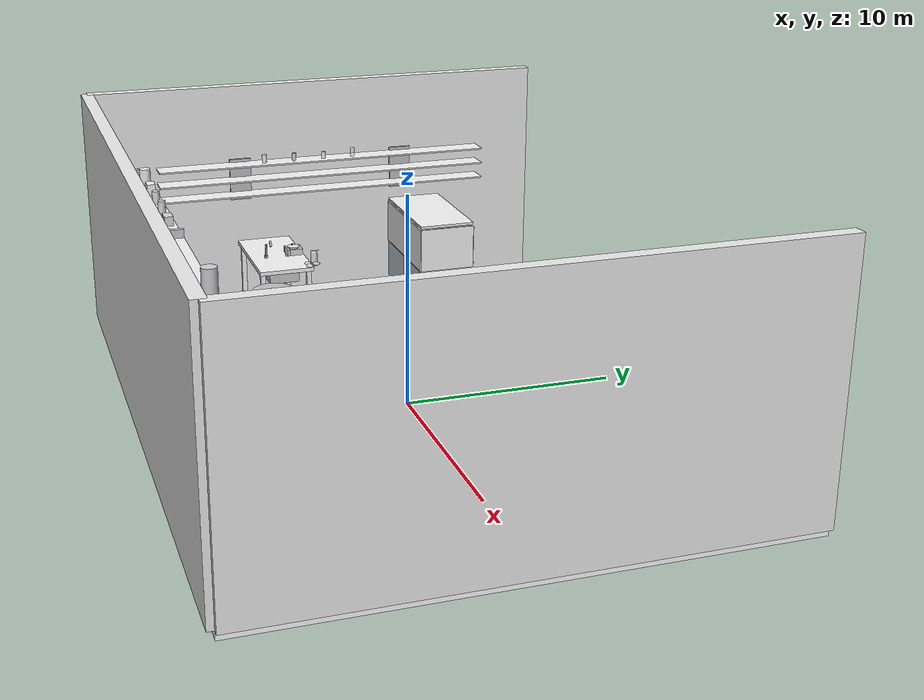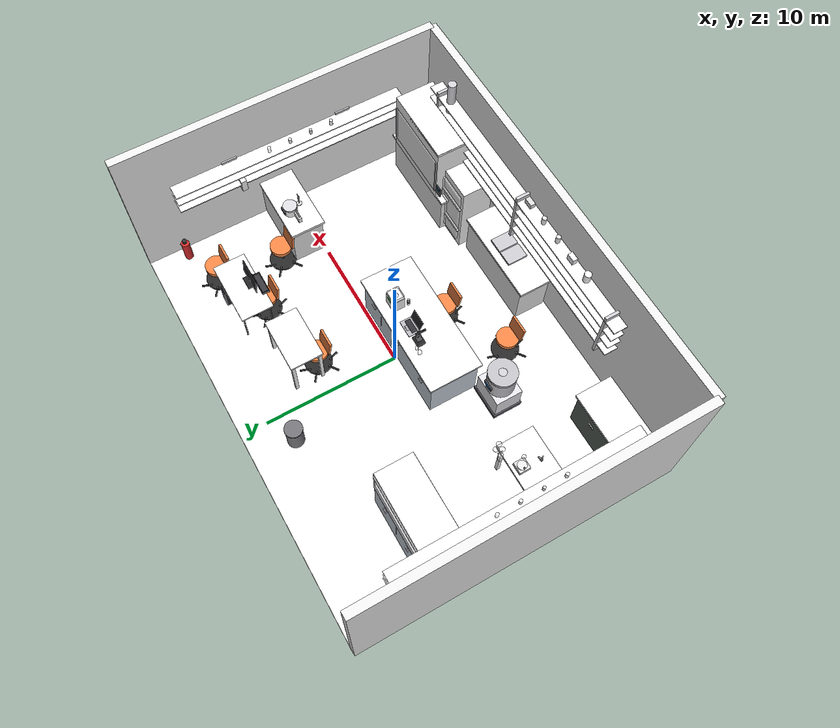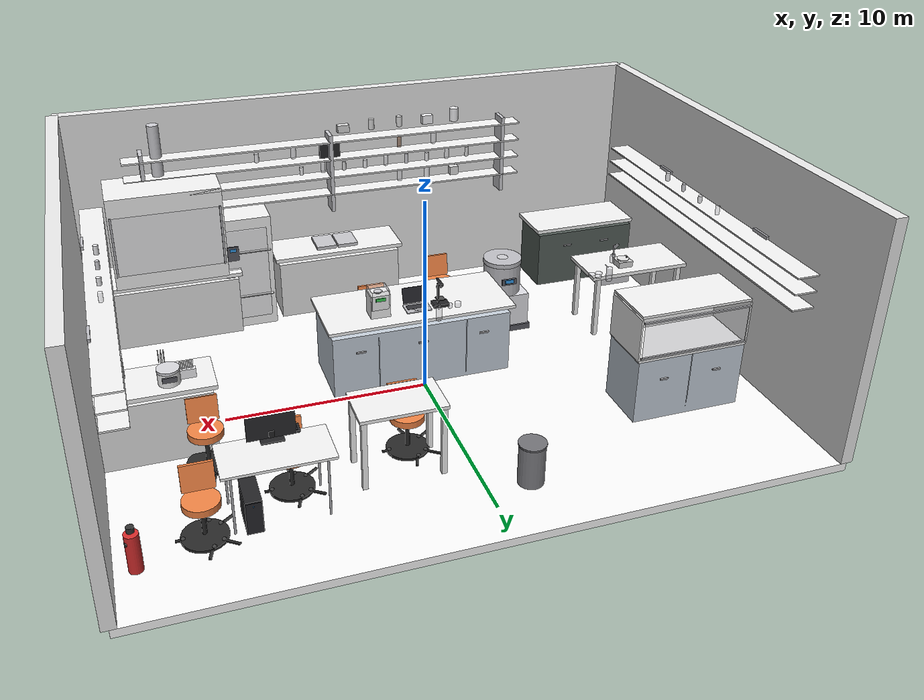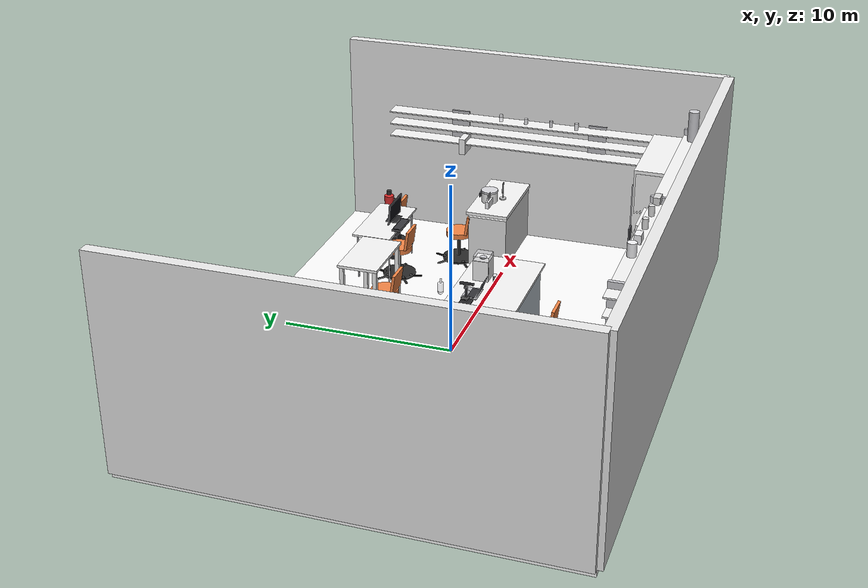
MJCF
<?xml version="1.0" encoding="UTF-8"?>
<mujoco model="science_laboratory">

    <!-- 编译器设置 fafaf-->
    <compiler angle="radian" coordinate="local" inertiafromgeom="true"/>

    <!-- 仿真选项fadfaf  -->
    <option timestep="0.002" gravity="0 0 -9.81" integrator="RK4"/>

    <!-- 视觉设置 -->
    <visual>
        <global offwidth="1920" offheight="1080"/>
        <quality shadowsize="8192"/>
        <map force="0.1" zfar="100"/>
    </visual>

    <!-- 资源定义 - 纹理和材质 -->
    <asset>
        <!-- ===== 纹理定义 ===== -->
        <texture name="floor_texff" type="2d" builtin="flat" rgb1="0.95 0.95 0.95" width="512" height="512"/>
        <texture name="wall_tex" type="2d" builtin="flat" rgb1="0.92 0.92 0.92" width="512" height="512"/>
        <texture name="metal_tex" type="2d" builtin="gradient" rgb1="0.78 0.78 0.80" rgb2="0.72 0.72 0.74" width="256" height="256"/>

        <!-- ===== 主要材质定义 ===== -->

        <!-- 房间结构 -->
        <material name="floor_mat" texture="floor_tex" specular="0.25" shininess="0.15" reflectance="0"/>
        <material name="wall_mat" texture="wall_tex" specular="0.12" shininess="0.08" reflectance="0"/>

        <!-- 实验台 -->
        <material name="table_white_mat" rgba="0.96 0.96 0.96 1" specular="0.35" shininess="0.25" reflectance="0.05"/>
        <material name="cabinet_bluegray_mat" rgba="0.78 0.82 0.86 1" specular="0.22" shininess="0.18" reflectance="0.02"/>
        <material name="cabinet_darkgreen_mat" rgba="0.33 0.37 0.35 1" specular="0.18" shininess="0.12" reflectance="0"/>
        <material name="cabinet_white_mat" rgba="0.90 0.90 0.90 1" specular="0.20" shininess="0.15" reflectance="0"/>

        <!-- ★★★ 橙色椅子 - 最重要的材质！★★★ -->
        <material name="orange_chair_mat" rgba="0.95 0.52 0.27 1" specular="0.18" shininess="0.12" reflectance="0"/>
        <material name="chair_base_mat" rgba="0.16 0.16 0.16 1" specular="0.35" shininess="0.25" reflectance="0.05"/>

        <!-- 金属设备 -->
        <material name="metal_equipment_mat" texture="metal_tex" specular="0.65" shininess="0.55" reflectance="0.15"/>
        <material name="stainless_steel_mat" rgba="0.78 0.78 0.80 1" specular="0.75" shininess="0.60" reflectance="0.20"/>

        <!-- 透明材质 -->
        <material name="glass_clear_mat" rgba="0.94 0.94 0.96 0.42" specular="0.88" shininess="0.85" reflectance="0.12"/>
        <material name="glass_equipment_mat" rgba="0.93 0.93 0.95 0.38" specular="0.80" shininess="0.75" reflectance="0.10"/>

        <!-- 液体材质 -->
        <material name="liquid_blue_mat" rgba="0.39 0.59 0.86 0.78" specular="0.55" shininess="0.50" reflectance="0.08"/>
        <material name="liquid_orange_mat" rgba="0.86 0.51 0.27 0.75" specular="0.52" shininess="0.48" reflectance="0.06"/>

        <!-- 塑料和其他 -->
        <material name="plastic_white_mat" rgba="0.96 0.96 0.97 1" specular="0.28" shininess="0.22" reflectance="0"/>
        <material name="display_black_mat" rgba="0.14 0.14 0.15 1" specular="0.42" shininess="0.38" reflectance="0.08"/>
    </asset>

    <!-- 世界体 -->
    <worldbody>
        <!-- ===== 光照设置 ===== -->
        <light name="main_light" pos="0.0 -4.0 20.0" dir="0 0.1 -1" diffuse="1.0 0.99 0.98" specular="0.35 0.35 0.35" castshadow="true" cutoff="60"/>
        <light name="fill_light_1" pos="-16.0 12.0 16.0" dir="0.4 -0.3 -0.8" diffuse="0.35 0.35 0.38" specular="0.08 0.08 0.08" castshadow="false"/>
        <light name="fill_light_2" pos="16.0 -12.0 16.0" dir="-0.4 0.3 -0.8" diffuse="0.32 0.32 0.35" specular="0.06 0.06 0.06" castshadow="false"/>
        <light name="ambient_light" pos="0.0 0.0 24.0" dir="0 0 -1" diffuse="0.25 0.25 0.26" specular="0 0 0" castshadow="false"/>

        <!-- ===== 相机设置 - 等距视角 ===== -->
        <camera name="isometric_main" pos="30.0 30.0 24.0" xyaxes="-0.707 0.707 0 -0.408 -0.408 0.816" fovy="45"/>
        <camera name="front_view" pos="0.0 36.0 9.0" xyaxes="-1 0 0 0 0.2 0.98"/>
        <camera name="top_view" pos="0.0 0.0 45.0" xyaxes="1 0 0 0 1 0"/>
        <camera name="left_view" pos="-36.0 0.0 9.0" xyaxes="0 -1 0 0.2 0 0.98"/>

        <!-- ===== 房间结构 ===== -->
        <!-- R01 - 地板 -->
        <geom name="floor" type="box" size="16.0 12.0 0.2" pos="0.0 0.0 -0.2" material="floor_mat"/>

        <!-- R02 - 左墙 -->
        <geom name="left_wall" type="box" size="0.3 12.0 6.0" pos="-16.0 0.0 6.0" material="wall_mat"/>

        <!-- R03 - 后墙 -->
        <geom name="back_wall" type="box" size="16.0 0.3 6.0" pos="0.0 -12.0 6.0" material="wall_mat"/>

        <!-- R04 - 右墙 -->
        <geom name="right_wall" type="box" size="0.3 12.0 6.0" pos="16.0 0.0 6.0" material="wall_mat"/>

        <!-- ===== 实验台 ===== -->

        <!-- T01 - 左后角实验台 -->
        <body name="table_01" pos="-12.8 -9.6 0.0">
            <!-- 台面 -->
            <geom name="t01_top" type="box" size="3.2 1.4 0.1" pos="0.0 0.0 3.5" material="table_white_mat"/>
            <!-- 台下柜体 - 深灰绿色 -->
            <geom name="t01_cabinet" type="box" size="3.0 1.28 1.6" pos="0.0 0.0 1.6" material="cabinet_darkgreen_mat"/>
            <!-- 柜门把手 -->
            <geom name="t01_handle_l" type="box" size="0.24 0.04 0.04" pos="-1.2 1.32 2.4" rgba="0.7 0.7 0.72 1"/>
            <geom name="t01_handle_r" type="box" size="0.24 0.04 0.04" pos="1.2 1.32 2.4" rgba="0.7 0.7 0.72 1"/>
        </body>

        <!-- T02 - 左中部实验台(带水槽) -->
        <body name="table_02" pos="-12.8 -3.2 0.0">
            <!-- 台面 -->
            <geom name="t02_top" type="box" size="2.8 1.4 0.1" pos="0.0 0.0 3.5" material="table_white_mat"/>
            <!-- 台腿 (4根方柱) -->
            <geom name="t02_leg_1" type="box" size="0.12 0.12 1.7" pos="-2.4 -1.2 1.7" material="table_white_mat"/>
            <geom name="t02_leg_2" type="box" size="0.12 0.12 1.7" pos="-2.4 1.2 1.7" material="table_white_mat"/>
            <geom name="t02_leg_3" type="box" size="0.12 0.12 1.7" pos="2.4 -1.2 1.7" material="table_white_mat"/>
            <geom name="t02_leg_4" type="box" size="0.12 0.12 1.7" pos="2.4 1.2 1.7" material="table_white_mat"/>
            <!-- 水槽 -->
            <geom name="t02_sink" type="box" size="0.9 0.76 0.4" pos="1.2 0.0 3.08" material="stainless_steel_mat"/>
            <!-- 水龙头 -->
            <body name="faucet_02" pos="0.6 -0.6 3.68">
                <geom name="faucet_base" type="cylinder" size="0.09 0.06" rgba="0.72 0.72 0.74 1"/>
                <geom name="faucet_pipe" type="cylinder" size="0.044 0.3" pos="0.0 0.0 0.36" rgba="0.72 0.72 0.74 1"/>
                <geom name="faucet_bend" type="box" size="0.16 0.044 0.044" pos="0.0 0.24 0.66" euler="0 0.7 0" rgba="0.72 0.72 0.74 1"/>
            </body>
        </body>

        <!-- T03 - 中央岛台 ★★★场景焦点★★★ -->
        <body name="table_central" pos="0.0 -2.0 0.0">
            <!-- 台面 -->
            <geom name="t03_top" type="box" size="4.8 2.0 0.08" pos="0.0 0.0 3.68" material="table_white_mat"/>
            <!-- 台下柜体 - ★浅蓝灰色★ -->
            <geom name="t03_cabinet_main" type="box" size="4.6 1.8 1.64" pos="0.0 0.0 1.64" material="cabinet_bluegray_mat"/>
            <!-- 柜门分隔线 -->
            <geom name="t03_div_1" type="box" size="0.02 1.8 1.52" pos="-2.28 0.0 1.72" rgba="0.7 0.75 0.80 1"/>
            <geom name="t03_div_2" type="box" size="0.02 1.8 1.52" pos="2.28 0.0 1.72" rgba="0.7 0.75 0.80 1"/>
            <!-- 把手 -->
            <geom name="t03_handle_1" type="box" size="0.24 0.04 0.04" pos="-3.2 1.84 2.4" rgba="0.7 0.7 0.72 1"/>
            <geom name="t03_handle_2" type="box" size="0.24 0.04 0.04" pos="0.0 1.84 2.4" rgba="0.7 0.7 0.72 1"/>
            <geom name="t03_handle_3" type="box" size="0.24 0.04 0.04" pos="3.2 1.84 2.4" rgba="0.7 0.7 0.72 1"/>
            <!-- 柜脚 -->
            <geom name="t03_foot_1" type="cylinder" size="0.06 0.1" pos="-4.0 -1.6 0.1" rgba="0.6 0.6 0.62 1"/>
            <geom name="t03_foot_2" type="cylinder" size="0.06 0.1" pos="-4.0 1.6 0.1" rgba="0.6 0.6 0.62 1"/>
            <geom name="t03_foot_3" type="cylinder" size="0.06 0.1" pos="4.0 -1.6 0.1" rgba="0.6 0.6 0.62 1"/>
            <geom name="t03_foot_4" type="cylinder" size="0.06 0.1" pos="4.0 1.6 0.1" rgba="0.6 0.6 0.62 1"/>
        </body>

        <!-- T04 - 后墙中部工作台(水槽区) -->
        <body name="table_04" pos="2.0 -10.4 0.0">
            <!-- 台面 -->
            <geom name="t04_top" type="box" size="3.6 1.3 0.1" pos="0.0 0.0 3.5" material="table_white_mat"/>
            <!-- 台下柜 -->
            <geom name="t04_cabinet" type="box" size="3.4 1.2 1.6" pos="0.0 0.0 1.6" material="cabinet_white_mat"/>
            <!-- 双槽水槽 -->
            <geom name="t04_sink_left" type="box" size="0.56 0.76 0.5" pos="-0.6 0.0 3.28" material="stainless_steel_mat"/>
            <geom name="t04_sink_right" type="box" size="0.56 0.76 0.5" pos="0.6 0.0 3.28" material="stainless_steel_mat"/>
        </body>

        <!-- T05 - 右后角实验台(通风橱区) -->
        <body name="table_05" pos="11.2 -9.6 0.0">
            <!-- 台面 -->
            <geom name="t05_top" type="box" size="3.6 1.4 0.1" pos="0.0 0.0 3.5" material="table_white_mat"/>
            <!-- 台下柜 -->
            <geom name="t05_cabinet" type="box" size="3.4 1.28 1.6" pos="0.0 0.0 1.6" material="cabinet_white_mat"/>
        </body>

        <!-- T06 - 右墙实验台 -->
        <body name="table_06" pos="13.2 1.2 0.0">
            <!-- 台面 -->
            <geom name="t06_top" type="box" size="2.8 1.3 0.1" pos="0.0 0.0 3.5" material="table_white_mat"/>
            <!-- 台下柜 -->
            <geom name="t06_cabinet" type="box" size="2.6 1.2 1.6" pos="0.0 0.0 1.6" material="cabinet_white_mat"/>
            <!-- 小水槽 -->
            <geom name="t06_sink" type="box" size="0.7 0.6 0.3" pos="1.8 0.0 3.28" material="stainless_steel_mat"/>
        </body>

        <!-- T07 - 右前方电脑工作台 -->
        <body name="table_computer" pos="8.8 7.2 0.0">
            <!-- 台面 -->
            <geom name="t07_top" type="box" size="2.4 1.2 0.06" pos="0.0 0.0 2.94" material="table_white_mat"/>
            <!-- 细金属腿 (4根) -->
            <geom name="t07_leg_1" type="cylinder" size="0.05 1.44" pos="-2.0 -1.0 1.44" rgba="0.7 0.7 0.72 1"/>
            <geom name="t07_leg_2" type="cylinder" size="0.05 1.44" pos="-2.0 1.0 1.44" rgba="0.7 0.7 0.72 1"/>
            <geom name="t07_leg_3" type="cylinder" size="0.05 1.44" pos="2.0 -1.0 1.44" rgba="0.7 0.7 0.72 1"/>
            <geom name="t07_leg_4" type="cylinder" size="0.05 1.44" pos="2.0 1.0 1.44" rgba="0.7 0.7 0.72 1"/>
        </body>

        <!-- T08 - 中前方小型工作台 -->
        <body name="table_08" pos="3.2 6.0 0.0">
            <!-- 台面 -->
            <geom name="t08_top" type="box" size="2.0 1.2 0.08" pos="0.0 0.0 3.52" material="table_white_mat"/>
            <!-- 台腿 -->
            <geom name="t08_leg_1" type="box" size="0.12 0.12 1.72" pos="-1.8 -1.0 1.72" material="table_white_mat"/>
            <geom name="t08_leg_2" type="box" size="0.12 0.12 1.72" pos="-1.8 1.0 1.72" material="table_white_mat"/>
            <geom name="t08_leg_3" type="box" size="0.12 0.12 1.72" pos="1.8 -1.0 1.72" material="table_white_mat"/>
            <geom name="t08_leg_4" type="box" size="0.12 0.12 1.72" pos="1.8 1.0 1.72" material="table_white_mat"/>
        </body>

        <!-- ===== 储物架 ===== -->

        <!-- C01 - 左墙上层架 ★★★与右墙架子对称★★★ -->
        <body name="shelf_left_upper" pos="-15.3 0.0 6.0">
            <!-- 架子支架 -->
            <geom name="c01_bracket_l" type="box" size="0.06 0.56 1.1" pos="0.0 -4.4 1.1" rgba="0.75 0.75 0.77 1"/>
            <geom name="c01_bracket_r" type="box" size="0.06 0.56 1.1" pos="0.0 4.4 1.1" rgba="0.75 0.75 0.77 1"/>
            <!-- 层板 - 沿y方向延伸，与右墙架子一致 -->
            <geom name="c01_shelf_1" type="box" size="0.56 8.8 0.036" pos="0.52 0.0 0.4" material="table_white_mat"/>
            <geom name="c01_shelf_2" type="box" size="0.56 8.8 0.036" pos="0.52 0.0 1.2" material="table_white_mat"/>
            <geom name="c01_shelf_3" type="box" size="0.56 8.8 0.036" pos="0.52 0.0 2.0" material="table_white_mat"/>
            <!-- 物品 - 与右墙架子对称 -->
            <geom name="c01_item_1" type="cylinder" size="0.12 0.24" pos="0.6 -3.2 2.24" material="plastic_white_mat"/>
            <geom name="c01_item_2" type="cylinder" size="0.1 0.22" pos="0.6 -1.6 2.22" rgba="0.85 0.85 0.87 1"/>
            <geom name="c01_item_3" type="cylinder" size="0.112 0.2" pos="0.6 0.0 2.2" material="plastic_white_mat"/>
            <geom name="c01_item_4" type="cylinder" size="0.104 0.24" pos="0.6 1.6 2.24" material="glass_clear_mat"/>
        </body>

        <!-- C04 - 后墙长架 ★★★主要存储区★★★ -->
        <body name="shelf_back_wall" pos="2.0 -11.2 5.6">
            <!-- 支架 -->
            <geom name="c04_frame_l" type="box" size="0.1 0.5 2.2" pos="-10.0 0.5 2.2" rgba="0.8 0.8 0.82 1"/>
            <geom name="c04_frame_c" type="box" size="0.1 0.5 2.2" pos="0.0 0.5 2.2" rgba="0.8 0.8 0.82 1"/>
            <geom name="c04_frame_r" type="box" size="0.1 0.5 2.2" pos="10.0 0.5 2.2" rgba="0.8 0.8 0.82 1"/>

            <!-- 4层层板 -->
            <geom name="c04_shelf_1" type="box" size="11.0 0.5 0.04" pos="0.0 0.5 1.0" material="table_white_mat"/>
            <geom name="c04_shelf_2" type="box" size="11.0 0.5 0.04" pos="0.0 0.5 2.0" material="table_white_mat"/>
            <geom name="c04_shelf_3" type="box" size="11.0 0.5 0.04" pos="0.0 0.5 3.0" material="table_white_mat"/>
            <geom name="c04_shelf_4" type="box" size="11.0 0.5 0.04" pos="0.0 0.5 4.0" material="table_white_mat"/>

            <!-- 层板上的物品 (简化表示) -->
            <geom name="c04_item_4_1" type="cylinder" size="0.24 0.36" pos="-7.2 0.5 4.76" material="plastic_white_mat"/>
            <geom name="c04_item_4_2" type="box" size="0.3 0.18 0.24" pos="-5.6 0.5 4.64" material="plastic_white_mat"/>
            <geom name="c04_item_4_3" type="cylinder" size="0.16 0.28" pos="-4.0 0.5 4.68" rgba="0.88 0.88 0.88 1"/>
            <geom name="c04_item_4_4" type="cylinder" size="0.16 0.28" pos="-2.4 0.5 4.68" rgba="0.88 0.88 0.88 1"/>
            <geom name="c04_item_4_5" type="box" size="0.32 0.18 0.2" pos="-0.8 0.5 4.6" rgba="0.85 0.85 0.85 1"/>

            <!-- 第3层 - 包含黑色显示器 -->
            <geom name="c04_item_3_1" type="cylinder" size="0.14 0.3" pos="-6.0 0.5 3.5" material="glass_clear_mat"/>
            <geom name="c04_item_3_2" type="cylinder" size="0.12 0.26" pos="-4.0 0.5 3.46" rgba="0.6 0.45 0.35 0.7"/>
            <!-- ★黑色显示器/仪器★ -->
            <geom name="c04_display" type="box" size="0.56 0.12 0.44" pos="0.0 0.5 3.44" material="display_black_mat"/>
            <geom name="c04_item_3_4" type="cylinder" size="0.14 0.28" pos="2.0 0.5 3.48" material="glass_clear_mat"/>
            <geom name="c04_item_3_5" type="cylinder" size="0.12 0.24" pos="4.0 0.5 3.44" material="plastic_white_mat"/>

            <!-- 第2层 - 密集瓶罐 -->
            <geom name="c04_item_2_1" type="cylinder" size="0.1 0.28" pos="-8.0 0.5 2.48" rgba="0.88 0.88 0.88 1"/>
            <geom name="c04_item_2_2" type="cylinder" size="0.12 0.26" pos="-6.8 0.5 2.46" material="glass_clear_mat"/>
            <geom name="c04_item_2_3" type="cylinder" size="0.112 0.24" pos="-5.6 0.5 2.44" material="plastic_white_mat"/>
            <geom name="c04_item_2_4" type="cylinder" size="0.1 0.28" pos="-4.4 0.5 2.48" rgba="0.85 0.85 0.87 1"/>
            <geom name="c04_item_2_5" type="cylinder" size="0.12 0.26" pos="-3.2 0.5 2.46" material="glass_clear_mat"/>
            <geom name="c04_item_2_6" type="cylinder" size="0.108 0.22" pos="-2.0 0.5 2.42" material="plastic_white_mat"/>
            <geom name="c04_item_2_7" type="cylinder" size="0.1 0.24" pos="-0.8 0.5 2.44" rgba="0.88 0.88 0.88 1"/>
            <geom name="c04_item_2_8" type="cylinder" size="0.112 0.26" pos="0.4 0.5 2.46" material="glass_clear_mat"/>
            <geom name="c04_item_2_9" type="cylinder" size="0.104 0.22" pos="1.6 0.5 2.42" material="plastic_white_mat"/>

            <geom name="c04_item_1_1" type="box" size="0.24 0.18 0.24" pos="-7.2 0.5 1.44" rgba="0.88 0.88 0.88 1"/>
            <geom name="c04_item_1_2" type="cylinder" size="0.16 0.32" pos="-5.6 0.5 1.52" material="plastic_white_mat"/>
            <geom name="c04_item_1_3" type="cylinder" size="0.14 0.3" pos="-4.0 0.5 1.5" material="glass_clear_mat"/>
        </body>

        <!-- C06 - 右墙上方架 -->
        <body name="shelf_right_upper" pos="15.3 0.0 6.0">
            <!-- 架子支架 -->
            <geom name="c06_bracket_l" type="box" size="0.06 0.56 1.1" pos="0.0 -4.4 1.1" rgba="0.75 0.75 0.77 1"/>
            <geom name="c06_bracket_r" type="box" size="0.06 0.56 1.1" pos="0.0 4.4 1.1" rgba="0.75 0.75 0.77 1"/>
            <!-- 层板 -->
            <geom name="c06_shelf_1" type="box" size="0.56 8.8 0.036" pos="-0.52 0.0 0.4" material="table_white_mat"/>
            <geom name="c06_shelf_2" type="box" size="0.56 8.8 0.036" pos="-0.52 0.0 1.2" material="table_white_mat"/>
            <geom name="c06_shelf_3" type="box" size="0.56 8.8 0.036" pos="-0.52 0.0 2.0" material="table_white_mat"/>
            <!-- 物品 -->
            <geom name="c06_item_1" type="cylinder" size="0.12 0.24" pos="-0.6 -3.2 2.24" material="plastic_white_mat"/>
            <geom name="c06_item_2" type="cylinder" size="0.1 0.22" pos="-0.6 -1.6 2.22" rgba="0.85 0.85 0.87 1"/>
            <geom name="c06_item_3" type="cylinder" size="0.112 0.2" pos="-0.6 0.0 2.2" material="plastic_white_mat"/>
            <geom name="c06_item_4" type="cylinder" size="0.104 0.24" pos="-0.6 1.6 2.24" material="glass_clear_mat"/>
        </body>

        <!-- ===== 实验设备 ===== -->

        <!-- E01 - 大型分析仪器/离心机 ★★★场景核心设备★★★ -->
        <body name="equipment_centrifuge_large" pos="-6.0 -4.8 0.0">
            <!-- 底座基座 -->
            <geom name="e01_base" type="box" size="1.3 1.1 0.16" pos="0.0 0.0 0.16" rgba="0.35 0.35 0.38 1"/>
            <!-- 脚垫 -->
            <geom name="e01_foot_1" type="cylinder" size="0.06 0.06" pos="-1.12 -0.92 0.06" rgba="0.3 0.3 0.32 1"/>
            <geom name="e01_foot_2" type="cylinder" size="0.06 0.06" pos="-1.12 0.92 0.06" rgba="0.3 0.3 0.32 1"/>
            <geom name="e01_foot_3" type="cylinder" size="0.06 0.06" pos="1.12 -0.92 0.06" rgba="0.3 0.3 0.32 1"/>
            <geom name="e01_foot_4" type="cylinder" size="0.06 0.06" pos="1.12 0.92 0.06" rgba="0.3 0.3 0.32 1"/>
            <!-- 下部柜体 -->
            <geom name="e01_lower_cabinet" type="box" size="1.2 1.0 0.9" pos="0.0 0.0 1.22" rgba="0.88 0.88 0.90 1"/>
            <!-- 中部主体(离心腔) - 圆柱形 -->
            <geom name="e01_chamber" type="cylinder" size="1.0 0.9" pos="0.0 0.0 3.03" material="metal_equipment_mat"/>
            <!-- 顶盖 -->
            <body name="e01_lid" pos="0.0 0.0 3.93">
                <joint name="e01_lid_hinge" type="hinge" axis="1 0 0" pos="0.0 0.96 0.0" range="0.0 3.14" damping="1.5"/>
                <geom name="e01_lid_cover" type="cylinder" size="1.04 0.12" material="metal_equipment_mat"/>
                <!-- 观察窗 -->
                <geom name="e01_window" type="cylinder" size="0.3 0.124" rgba="0.93 0.93 0.95 0.4"/>
            </body>
            <!-- 控制面板 -->
            <geom name="e01_panel_bg" type="box" size="0.4 0.06 0.16" pos="0.0 1.04 3.04" rgba="0.35 0.35 0.38 1"/>
            <geom name="e01_display" type="box" size="0.24 0.04 0.1" pos="0.0 1.1 3.08" rgba="0.2 0.6 0.9 1"/>
            <geom name="e01_button_1" type="cylinder" size="0.032 0.02" pos="-0.16 1.1 2.96" rgba="0.15 0.15 0.15 1"/>
            <geom name="e01_button_2" type="cylinder" size="0.032 0.02" pos="0.16 1.1 2.96" rgba="0.15 0.15 0.15 1"/>
        </body>

        <!-- E03 - 超净工作台 ★★★左前方焦点★★★ -->
        <body name="equipment_clean_bench" pos="-11.2 4.8 0.0">
            <!-- 底座/台下柜体 - ★浅蓝灰色★ -->
            <geom name="e03_cabinet_main" type="box" size="2.8 1.4 1.64" pos="0.0 0.0 1.64" material="cabinet_bluegray_mat"/>
            <!-- 柜门分隔 -->
            <geom name="e03_door_div" type="box" size="0.02 1.4 1.52" pos="0.0 0.0 1.72" rgba="0.7 0.75 0.80 1"/>
            <!-- 把手 -->
            <geom name="e03_handle_l" type="box" size="0.2 0.04 0.04" pos="-1.4 1.44 2.2" rgba="0.7 0.7 0.72 1"/>
            <geom name="e03_handle_r" type="box" size="0.2 0.04 0.04" pos="1.4 1.44 2.2" rgba="0.7 0.7 0.72 1"/>
            <!-- 支脚 -->
            <geom name="e03_foot_1" type="cylinder" size="0.06 0.1" pos="-2.48 -1.28 0.1" rgba="0.6 0.6 0.62 1"/>
            <geom name="e03_foot_2" type="cylinder" size="0.06 0.1" pos="-2.48 1.28 0.1" rgba="0.6 0.6 0.62 1"/>
            <geom name="e03_foot_3" type="cylinder" size="0.06 0.1" pos="2.48 -1.28 0.1" rgba="0.6 0.6 0.62 1"/>
            <geom name="e03_foot_4" type="cylinder" size="0.06 0.1" pos="2.48 1.28 0.1" rgba="0.6 0.6 0.62 1"/>

            <!-- 工作台面 -->
            <geom name="e03_worktop" type="box" size="2.84 1.4 0.06" pos="0.0 0.0 3.34" material="table_white_mat"/>

            <!-- 操作舱框架 -->
            <!-- 顶部 -->
            <geom name="e03_top_panel" type="box" size="2.84 1.4 0.06" pos="0.0 0.0 5.68" material="table_white_mat"/>
            <!-- 侧面 -->
            <geom name="e03_side_l" type="box" size="0.04 1.4 1.1" pos="-2.84 0.0 4.46" material="table_white_mat"/>
            <geom name="e03_side_r" type="box" size="0.04 1.4 1.1" pos="2.84 0.0 4.46" material="table_white_mat"/>
            <!-- 后面 -->
            <geom name="e03_back" type="box" size="2.84 0.04 1.1" pos="0.0 -1.4 4.46" material="table_white_mat"/>

            <!-- 透明前挡板 -->
            <body name="e03_glass_door" pos="0.0 1.44 4.46">
                <joint name="e03_door_slide" type="slide" axis="0 0 1" range="0.0 0.6" damping="2"/>
                <geom name="e03_glass" type="box" size="2.7 0.04 0.9" material="glass_equipment_mat"/>
                <!-- 玻璃边框 -->
                <geom name="e03_frame_top" type="box" size="2.76 0.05 0.04" pos="0.0 0.0 0.94" rgba="0.7 0.7 0.72 1"/>
                <geom name="e03_frame_bottom" type="box" size="2.76 0.05 0.04" pos="0.0 0.0 -0.94" rgba="0.7 0.7 0.72 1"/>
            </body>

            <!-- 内部照明 (表示为发光条) -->
            <geom name="e03_light" type="box" size="2.6 0.08 0.04" pos="0.0 0.0 5.6" rgba="1 1 0.98 0.8"/>
        </body>

        <!-- E06 - 通风橱 ★★★右后角重要设备★★★ -->
        <body name="equipment_fume_hood" pos="11.2 -9.6 3.6">
            <!-- 通风橱框架 -->
            <geom name="e06_frame" type="box" size="2.9 1.5 2.5" pos="0.0 0.0 2.5" material="table_white_mat"/>
            <!-- 工作台面 -->
            <geom name="e06_worktop" type="box" size="2.8 1.4 0.06" pos="0.0 0.0 0.06" material="table_white_mat"/>

            <!-- 侧壁 -->
            <geom name="e06_side_l" type="box" size="0.04 1.4 2.4" pos="-2.86 0.0 2.4" material="table_white_mat"/>
            <geom name="e06_side_r" type="box" size="0.04 1.4 2.4" pos="2.86 0.0 2.4" material="table_white_mat"/>
            <!-- 后壁 -->
            <geom name="e06_back" type="box" size="2.9 0.04 2.4" pos="0.0 -1.46 2.4" material="table_white_mat"/>
            <!-- 顶部 -->
            <geom name="e06_top" type="box" size="2.9 1.5 0.1" pos="0.0 0.0 4.9" material="table_white_mat"/>

            <!-- 透明前挡板(可滑动) -->
            <body name="e06_sash" pos="0.0 1.54 2.4">
                <joint name="e06_sash_slide" type="slide" axis="0 0 1" range="0.0 0.8" damping="3"/>
                <geom name="e06_glass" type="box" size="2.7 0.04 1.6" material="glass_equipment_mat"/>
                <!-- 边框 -->
                <geom name="e06_frame_l" type="box" size="0.05 0.05 1.64" pos="-2.75 0.0 0.0" rgba="0.7 0.7 0.72 1"/>
                <geom name="e06_frame_r" type="box" size="0.05 0.05 1.64" pos="2.75 0.0 0.0" rgba="0.7 0.7 0.72 1"/>
            </body>

            <!-- 控制面板 (左侧) -->
            <geom name="e06_control_panel" type="box" size="0.3 0.04 0.4" pos="-3.2 1.48 1.2" rgba="0.35 0.35 0.38 1"/>
            <geom name="e06_display" type="box" size="0.16 0.02 0.08" pos="-3.2 1.52 1.4" rgba="0.2 0.6 0.9 1"/>

            <!-- 排风管道 -->
            <geom name="e06_duct" type="cylinder" size="0.3 1.4" pos="0.0 -1.2 6.4" rgba="0.82 0.82 0.84 1"/>

            <!-- 内部照明 -->
            <geom name="e06_light" type="box" size="2.6 0.12 0.04" pos="0.0 0.0 4.76" rgba="1 1 0.98 0.75"/>
        </body>

        <!-- E04 - 显微镜 -->
        <body name="equipment_microscope" pos="-1.2 -1.2 3.8">
            <!-- 底座 -->
            <geom name="e04_base" type="box" size="0.4 0.3 0.08" pos="0.0 0.0 0.04" material="display_black_mat"/>
            <!-- C形支柱 -->
            <geom name="e04_pillar" type="box" size="0.04 0.07 0.7" pos="0.12 0.0 0.48" material="display_black_mat"/>
            <!-- 支臂 -->
            <geom name="e04_arm" type="box" size="0.16 0.06 0.04" pos="0.04 0.0 1.0" material="display_black_mat"/>
            <!-- 镜筒 -->
            <body name="e04_tube" pos="0.0 0.0 1.2">
                <joint name="e04_focus" type="slide" axis="0 0 1" range="-0.1 0.1" damping="2"/>
                <geom name="e04_tube_main" type="cylinder" size="0.08 0.3" euler="1.57 0 0" material="display_black_mat"/>
                <!-- 目镜 -->
                <geom name="e04_eyepiece" type="cylinder" size="0.07 0.12" pos="0.0 -0.36 0.0" euler="1.57 0 0" material="display_black_mat"/>
            </body>
            <!-- 载物台 -->
            <geom name="e04_stage" type="box" size="0.2 0.2 0.02" pos="0.0 0.0 0.32" rgba="0.3 0.3 0.3 1"/>
        </body>

        <!-- E05 - 分析天平 -->
        <body name="equipment_balance" pos="2.0 -1.2 3.8">
            <!-- 主体 -->
            <geom name="e05_body" type="box" size="0.5 0.44 0.6" pos="0.0 0.0 0.6" material="table_white_mat"/>
            <!-- 显示屏 -->
            <geom name="e05_display" type="box" size="0.24 0.02 0.08" pos="0.0 0.46 1.0" rgba="0.2 0.8 0.3 1"/>
            <!-- 称重盘 -->
            <geom name="e05_pan" type="cylinder" size="0.2 0.02" pos="0.0 0.0 1.24" rgba="0.75 0.75 0.77 1"/>

            <!-- 玻璃防风罩 -->
            <geom name="e05_glass_front" type="box" size="0.44 0.02 0.5" pos="0.0 0.42 0.94" material="glass_clear_mat"/>
            <geom name="e05_glass_back" type="box" size="0.44 0.02 0.5" pos="0.0 -0.42 0.94" material="glass_clear_mat"/>
            <geom name="e05_glass_left" type="box" size="0.02 0.44 0.5" pos="-0.44 0.0 0.94" material="glass_clear_mat"/>
            <geom name="e05_glass_right" type="box" size="0.02 0.44 0.5" pos="0.44 0.0 0.94" material="glass_clear_mat"/>
            <geom name="e05_glass_top" type="box" size="0.44 0.44 0.02" pos="0.0 0.0 1.44" material="glass_clear_mat"/>
        </body>

        <!-- E07 - 小型台式离心机 -->
        <body name="equipment_centrifuge_small" pos="12.4 1.6 3.8">
            <!-- 主体 -->
            <geom name="e07_body" type="cylinder" size="0.5 0.44" material="table_white_mat"/>
            <!-- 顶盖 -->
            <geom name="e07_lid" type="cylinder" size="0.52 0.06" pos="0.0 0.0 0.5" rgba="0.85 0.85 0.87 1"/>
            <!-- 控制面板 -->
            <geom name="e07_panel" type="box" size="0.32 0.04 0.12" pos="0.0 0.54 0.24" rgba="0.35 0.35 0.38 1"/>
        </body>

        <!-- E08 - 磁力搅拌器 -->
        <body name="equipment_stirrer" pos="-12.0 -2.4 3.8">
            <!-- 底座 -->
            <geom name="e08_base" type="box" size="0.4 0.4 0.16" pos="0.0 0.0 0.16" rgba="0.85 0.85 0.85 1"/>
            <!-- 搅拌平台 -->
            <geom name="e08_platform" type="cylinder" size="0.32 0.032" pos="0.0 0.0 0.352" rgba="0.9 0.9 0.9 1"/>
            <!-- 控制旋钮 -->
            <geom name="e08_knob" type="cylinder" size="0.06 0.04" pos="-0.24 0.0 0.4" rgba="0.3 0.3 0.3 1"/>
        </body>

        <!-- E10 - 后墙大型白色设备(培养箱) -->
        <body name="equipment_incubator" pos="7.2 -10.0 0.0">
            <!-- 主体 -->
            <geom name="e10_body" type="box" size="1.4 1.2 3.2" pos="0.0 0.0 3.2" material="table_white_mat"/>
            <!-- 玻璃门 -->
            <geom name="e10_door_glass" type="box" size="1.12 0.08 2.6" pos="0.0 1.28 3.2" material="glass_equipment_mat"/>
            <!-- 门框 -->
            <geom name="e10_door_frame" type="box" size="1.28 0.1 0.02" pos="0.0 1.3 1.88" rgba="0.85 0.85 0.85 1"/>
            <geom name="e10_door_frame_top" type="box" size="1.28 0.1 0.02" pos="0.0 1.3 4.52" rgba="0.85 0.85 0.85 1"/>
            <!-- 把手 -->
            <geom name="e10_handle" type="cylinder" size="0.032 0.24" pos="1.0 1.44 3.2" euler="0 1.57 0" rgba="0.6 0.6 0.62 1"/>
        </body>

        <!-- ===== 橙色椅子 ★★★★★ 最重要的视觉元素！★★★★★ ===== -->

        <!-- CH01 - 椅子1 (大型分析仪旁) -->
        <body name="chair_01" pos="-3.2 -7.2 0.0">
            <!-- 五星底座 -->
            <geom name="ch01_base" type="cylinder" size="1.0 0.06" pos="0.0 0.0 0.06" material="chair_base_mat"/>
            <!-- 辐条 (5个) -->
            <geom name="ch01_spoke_1" type="box" size="0.8 0.06 0.03" pos="0.4 0.0 0.06" material="chair_base_mat"/>
            <geom name="ch01_spoke_2" type="box" size="0.8 0.06 0.03" pos="-0.248 0.7 0.06" euler="0 0 1.257" material="chair_base_mat"/>
            <geom name="ch01_spoke_3" type="box" size="0.8 0.06 0.03" pos="-0.648 0.472 0.06" euler="0 0 2.513" material="chair_base_mat"/>
            <geom name="ch01_spoke_4" type="box" size="0.8 0.06 0.03" pos="-0.648 -0.472 0.06" euler="0 0 3.77" material="chair_base_mat"/>
            <geom name="ch01_spoke_5" type="box" size="0.8 0.06 0.03" pos="-0.248 -0.7 0.06" euler="0 0 5.026" material="chair_base_mat"/>
            <!-- 脚轮 (5个) -->
            <geom name="ch01_wheel_1" type="sphere" size="0.1" pos="0.88 0.0 0.1" rgba="0.25 0.25 0.25 1"/>
            <geom name="ch01_wheel_2" type="sphere" size="0.1" pos="-0.272 0.836 0.1" rgba="0.25 0.25 0.25 1"/>
            <geom name="ch01_wheel_3" type="sphere" size="0.1" pos="-0.712 0.516 0.1" rgba="0.25 0.25 0.25 1"/>
            <geom name="ch01_wheel_4" type="sphere" size="0.1" pos="-0.712 -0.516 0.1" rgba="0.25 0.25 0.25 1"/>
            <geom name="ch01_wheel_5" type="sphere" size="0.1" pos="-0.272 -0.836 0.1" rgba="0.25 0.25 0.25 1"/>

            <!-- 气压升降杆 -->
            <body name="ch01_lift" pos="0.0 0.0 0.2">
                <joint name="ch01_height" type="slide" axis="0 0 1" range="0.0 0.3" damping="5"/>
                <geom name="ch01_gas_cylinder" type="cylinder" size="0.1 0.7" pos="0.0 0.0 0.7" material="chair_base_mat"/>

                <!-- 座椅主体 -->
                <body name="ch01_seat_body" pos="0.0 0.0 1.4">
                    <joint name="ch01_rotate" type="hinge" axis="0 0 1" damping="0.5"/>
                    <!-- ★★★坐垫 - 明亮橙色★★★ -->
                    <geom name="ch01_seat" type="cylinder" size="0.8 0.16" pos="0.0 0.0 0.16" material="orange_chair_mat"/>
                    <!-- ★★★靠背 - 明亮橙色★★★ -->
                    <geom name="ch01_backrest" type="box" size="0.7 0.08 0.6" pos="0.0 -0.72 0.92" euler="0.15 0 0" material="orange_chair_mat"/>
                    <!-- 靠背支架 -->
                    <geom name="ch01_back_support" type="cylinder" size="0.04 0.48" pos="0.0 -0.64 0.48" euler="0.2 0 0" material="chair_base_mat"/>
                </body>
            </body>
        </body>

        <!-- CH02 - 椅子2 (中央岛台后侧) -->
        <body name="chair_02" pos="1.2 -4.8 0.0">
            <geom name="ch02_base" type="cylinder" size="1.0 0.06" pos="0.0 0.0 0.06" material="chair_base_mat"/>
            <geom name="ch02_spoke_1" type="box" size="0.8 0.06 0.03" pos="0.4 0.0 0.06" material="chair_base_mat"/>
            <geom name="ch02_spoke_2" type="box" size="0.8 0.06 0.03" pos="-0.248 0.7 0.06" euler="0 0 1.257" material="chair_base_mat"/>
            <geom name="ch02_spoke_3" type="box" size="0.8 0.06 0.03" pos="-0.648 0.472 0.06" euler="0 0 2.513" material="chair_base_mat"/>
            <geom name="ch02_spoke_4" type="box" size="0.8 0.06 0.03" pos="-0.648 -0.472 0.06" euler="0 0 3.77" material="chair_base_mat"/>
            <geom name="ch02_spoke_5" type="box" size="0.8 0.06 0.03" pos="-0.248 -0.7 0.06" euler="0 0 5.026" material="chair_base_mat"/>
            <geom name="ch02_wheel_1" type="sphere" size="0.1" pos="0.88 0.0 0.1" rgba="0.25 0.25 0.25 1"/>
            <geom name="ch02_wheel_2" type="sphere" size="0.1" pos="-0.272 0.836 0.1" rgba="0.25 0.25 0.25 1"/>
            <geom name="ch02_wheel_3" type="sphere" size="0.1" pos="-0.712 0.516 0.1" rgba="0.25 0.25 0.25 1"/>
            <geom name="ch02_wheel_4" type="sphere" size="0.1" pos="-0.712 -0.516 0.1" rgba="0.25 0.25 0.25 1"/>
            <geom name="ch02_wheel_5" type="sphere" size="0.1" pos="-0.272 -0.836 0.1" rgba="0.25 0.25 0.25 1"/>
            <body name="ch02_lift" pos="0.0 0.0 0.2">
                <joint name="ch02_height" type="slide" axis="0 0 1" range="0.0 0.3" damping="5"/>
                <geom name="ch02_gas_cylinder" type="cylinder" size="0.1 0.7" pos="0.0 0.0 0.7" material="chair_base_mat"/>
                <body name="ch02_seat_body" pos="0.0 0.0 1.4">
                    <joint name="ch02_rotate" type="hinge" axis="0 0 1" damping="0.5"/>
                    <geom name="ch02_seat" type="cylinder" size="0.8 0.16" pos="0.0 0.0 0.16" material="orange_chair_mat"/>
                    <geom name="ch02_backrest" type="box" size="0.7 0.08 0.6" pos="0.0 -0.72 0.92" euler="0.15 0 0" material="orange_chair_mat"/>
                    <geom name="ch02_back_support" type="cylinder" size="0.04 0.48" pos="0.0 -0.64 0.48" euler="0.2 0 0" material="chair_base_mat"/>
                </body>
            </body>
        </body>

        <!-- CH03 - 椅子3 (中前方小工作台旁) -->
        <body name="chair_03" pos="2.4 4.8 0.0">
            <geom name="ch03_base" type="cylinder" size="1.0 0.06" pos="0.0 0.0 0.06" material="chair_base_mat"/>
            <geom name="ch03_spoke_1" type="box" size="0.8 0.06 0.03" pos="0.4 0.0 0.06" material="chair_base_mat"/>
            <geom name="ch03_spoke_2" type="box" size="0.8 0.06 0.03" pos="-0.248 0.7 0.06" euler="0 0 1.257" material="chair_base_mat"/>
            <geom name="ch03_spoke_3" type="box" size="0.8 0.06 0.03" pos="-0.648 0.472 0.06" euler="0 0 2.513" material="chair_base_mat"/>
            <geom name="ch03_spoke_4" type="box" size="0.8 0.06 0.03" pos="-0.648 -0.472 0.06" euler="0 0 3.77" material="chair_base_mat"/>
            <geom name="ch03_spoke_5" type="box" size="0.8 0.06 0.03" pos="-0.248 -0.7 0.06" euler="0 0 5.026" material="chair_base_mat"/>
            <geom name="ch03_wheel_1" type="sphere" size="0.1" pos="0.88 0.0 0.1" rgba="0.25 0.25 0.25 1"/>
            <geom name="ch03_wheel_2" type="sphere" size="0.1" pos="-0.272 0.836 0.1" rgba="0.25 0.25 0.25 1"/>
            <geom name="ch03_wheel_3" type="sphere" size="0.1" pos="-0.712 0.516 0.1" rgba="0.25 0.25 0.25 1"/>
            <geom name="ch03_wheel_4" type="sphere" size="0.1" pos="-0.712 -0.516 0.1" rgba="0.25 0.25 0.25 1"/>
            <geom name="ch03_wheel_5" type="sphere" size="0.1" pos="-0.272 -0.836 0.1" rgba="0.25 0.25 0.25 1"/>
            <body name="ch03_lift" pos="0.0 0.0 0.2">
                <joint name="ch03_height" type="slide" axis="0 0 1" range="0.0 0.3" damping="5"/>
                <geom name="ch03_gas_cylinder" type="cylinder" size="0.1 0.7" pos="0.0 0.0 0.7" material="chair_base_mat"/>
                <body name="ch03_seat_body" pos="0.0 0.0 1.4">
                    <joint name="ch03_rotate" type="hinge" axis="0 0 1" damping="0.5"/>
                    <geom name="ch03_seat" type="cylinder" size="0.8 0.16" pos="0.0 0.0 0.16" material="orange_chair_mat"/>
                    <geom name="ch03_backrest" type="box" size="0.7 0.08 0.6" pos="0.0 -0.72 0.92" euler="0.15 0 0" material="orange_chair_mat"/>
                    <geom name="ch03_back_support" type="cylinder" size="0.04 0.48" pos="0.0 -0.64 0.48" euler="0.2 0 0" material="chair_base_mat"/>
                </body>
            </body>
        </body>

        <!-- CH04 - 椅子4 (右前方电脑工作台) -->
        <body name="chair_04" pos="8.0 6.0 0.0">
            <geom name="ch04_base" type="cylinder" size="1.0 0.06" pos="0.0 0.0 0.06" material="chair_base_mat"/>
            <geom name="ch04_spoke_1" type="box" size="0.8 0.06 0.03" pos="0.4 0.0 0.06" material="chair_base_mat"/>
            <geom name="ch04_spoke_2" type="box" size="0.8 0.06 0.03" pos="-0.248 0.7 0.06" euler="0 0 1.257" material="chair_base_mat"/>
            <geom name="ch04_spoke_3" type="box" size="0.8 0.06 0.03" pos="-0.648 0.472 0.06" euler="0 0 2.513" material="chair_base_mat"/>
            <geom name="ch04_spoke_4" type="box" size="0.8 0.06 0.03" pos="-0.648 -0.472 0.06" euler="0 0 3.77" material="chair_base_mat"/>
            <geom name="ch04_spoke_5" type="box" size="0.8 0.06 0.03" pos="-0.248 -0.7 0.06" euler="0 0 5.026" material="chair_base_mat"/>
            <geom name="ch04_wheel_1" type="sphere" size="0.1" pos="0.88 0.0 0.1" rgba="0.25 0.25 0.25 1"/>
            <geom name="ch04_wheel_2" type="sphere" size="0.1" pos="-0.272 0.836 0.1" rgba="0.25 0.25 0.25 1"/>
            <geom name="ch04_wheel_3" type="sphere" size="0.1" pos="-0.712 0.516 0.1" rgba="0.25 0.25 0.25 1"/>
            <geom name="ch04_wheel_4" type="sphere" size="0.1" pos="-0.712 -0.516 0.1" rgba="0.25 0.25 0.25 1"/>
            <geom name="ch04_wheel_5" type="sphere" size="0.1" pos="-0.272 -0.836 0.1" rgba="0.25 0.25 0.25 1"/>
            <body name="ch04_lift" pos="0.0 0.0 0.2">
                <joint name="ch04_height" type="slide" axis="0 0 1" range="0.0 0.3" damping="5"/>
                <geom name="ch04_gas_cylinder" type="cylinder" size="0.1 0.7" pos="0.0 0.0 0.7" material="chair_base_mat"/>
                <body name="ch04_seat_body" pos="0.0 0.0 1.4">
                    <joint name="ch04_rotate" type="hinge" axis="0 0 1" damping="0.5"/>
                    <geom name="ch04_seat" type="cylinder" size="0.8 0.16" pos="0.0 0.0 0.16" material="orange_chair_mat"/>
                    <geom name="ch04_backrest" type="box" size="0.7 0.08 0.6" pos="0.0 -0.72 0.92" euler="0.15 0 0" material="orange_chair_mat"/>
                    <geom name="ch04_back_support" type="cylinder" size="0.04 0.48" pos="0.0 -0.64 0.48" euler="0.2 0 0" material="chair_base_mat"/>
                </body>
            </body>
        </body>

        <!-- CH05 - 椅子5 (右侧实验台旁) -->
        <body name="chair_05" pos="11.2 3.2 0.0">
            <geom name="ch05_base" type="cylinder" size="1.0 0.06" pos="0.0 0.0 0.06" material="chair_base_mat"/>
            <geom name="ch05_spoke_1" type="box" size="0.8 0.06 0.03" pos="0.4 0.0 0.06" material="chair_base_mat"/>
            <geom name="ch05_spoke_2" type="box" size="0.8 0.06 0.03" pos="-0.248 0.7 0.06" euler="0 0 1.257" material="chair_base_mat"/>
            <geom name="ch05_spoke_3" type="box" size="0.8 0.06 0.03" pos="-0.648 0.472 0.06" euler="0 0 2.513" material="chair_base_mat"/>
            <geom name="ch05_spoke_4" type="box" size="0.8 0.06 0.03" pos="-0.648 -0.472 0.06" euler="0 0 3.77" material="chair_base_mat"/>
            <geom name="ch05_spoke_5" type="box" size="0.8 0.06 0.03" pos="-0.248 -0.7 0.06" euler="0 0 5.026" material="chair_base_mat"/>
            <geom name="ch05_wheel_1" type="sphere" size="0.1" pos="0.88 0.0 0.1" rgba="0.25 0.25 0.25 1"/>
            <geom name="ch05_wheel_2" type="sphere" size="0.1" pos="-0.272 0.836 0.1" rgba="0.25 0.25 0.25 1"/>
            <geom name="ch05_wheel_3" type="sphere" size="0.1" pos="-0.712 0.516 0.1" rgba="0.25 0.25 0.25 1"/>
            <geom name="ch05_wheel_4" type="sphere" size="0.1" pos="-0.712 -0.516 0.1" rgba="0.25 0.25 0.25 1"/>
            <geom name="ch05_wheel_5" type="sphere" size="0.1" pos="-0.272 -0.836 0.1" rgba="0.25 0.25 0.25 1"/>
            <body name="ch05_lift" pos="0.0 0.0 0.2">
                <joint name="ch05_height" type="slide" axis="0 0 1" range="0.0 0.3" damping="5"/>
                <geom name="ch05_gas_cylinder" type="cylinder" size="0.1 0.7" pos="0.0 0.0 0.7" material="chair_base_mat"/>
                <body name="ch05_seat_body" pos="0.0 0.0 1.4">
                    <joint name="ch05_rotate" type="hinge" axis="0 0 1" damping="0.5"/>
                    <geom name="ch05_seat" type="cylinder" size="0.8 0.16" pos="0.0 0.0 0.16" material="orange_chair_mat"/>
                    <geom name="ch05_backrest" type="box" size="0.7 0.08 0.6" pos="0.0 -0.72 0.92" euler="0.15 0 0" material="orange_chair_mat"/>
                    <geom name="ch05_back_support" type="cylinder" size="0.04 0.48" pos="0.0 -0.64 0.48" euler="0.2 0 0" material="chair_base_mat"/>
                </body>
            </body>
        </body>

        <!-- CH06 - 椅子6 (右前角) -->
        <body name="chair_06" pos="12.0 8.0 0.0">
            <geom name="ch06_base" type="cylinder" size="1.0 0.06" pos="0.0 0.0 0.06" material="chair_base_mat"/>
            <geom name="ch06_spoke_1" type="box" size="0.8 0.06 0.03" pos="0.4 0.0 0.06" material="chair_base_mat"/>
            <geom name="ch06_spoke_2" type="box" size="0.8 0.06 0.03" pos="-0.248 0.7 0.06" euler="0 0 1.257" material="chair_base_mat"/>
            <geom name="ch06_spoke_3" type="box" size="0.8 0.06 0.03" pos="-0.648 0.472 0.06" euler="0 0 2.513" material="chair_base_mat"/>
            <geom name="ch06_spoke_4" type="box" size="0.8 0.06 0.03" pos="-0.648 -0.472 0.06" euler="0 0 3.77" material="chair_base_mat"/>
            <geom name="ch06_spoke_5" type="box" size="0.8 0.06 0.03" pos="-0.248 -0.7 0.06" euler="0 0 5.026" material="chair_base_mat"/>
            <geom name="ch06_wheel_1" type="sphere" size="0.1" pos="0.88 0.0 0.1" rgba="0.25 0.25 0.25 1"/>
            <geom name="ch06_wheel_2" type="sphere" size="0.1" pos="-0.272 0.836 0.1" rgba="0.25 0.25 0.25 1"/>
            <geom name="ch06_wheel_3" type="sphere" size="0.1" pos="-0.712 0.516 0.1" rgba="0.25 0.25 0.25 1"/>
            <geom name="ch06_wheel_4" type="sphere" size="0.1" pos="-0.712 -0.516 0.1" rgba="0.25 0.25 0.25 1"/>
            <geom name="ch06_wheel_5" type="sphere" size="0.1" pos="-0.272 -0.836 0.1" rgba="0.25 0.25 0.25 1"/>
            <body name="ch06_lift" pos="0.0 0.0 0.2">
                <joint name="ch06_height" type="slide" axis="0 0 1" range="0.0 0.3" damping="5"/>
                <geom name="ch06_gas_cylinder" type="cylinder" size="0.1 0.7" pos="0.0 0.0 0.7" material="chair_base_mat"/>
                <body name="ch06_seat_body" pos="0.0 0.0 1.4">
                    <joint name="ch06_rotate" type="hinge" axis="0 0 1" damping="0.5"/>
                    <geom name="ch06_seat" type="cylinder" size="0.8 0.16" pos="0.0 0.0 0.16" material="orange_chair_mat"/>
                    <geom name="ch06_backrest" type="box" size="0.7 0.08 0.6" pos="0.0 -0.72 0.92" euler="0.15 0 0" material="orange_chair_mat"/>
                    <geom name="ch06_back_support" type="cylinder" size="0.04 0.48" pos="0.0 -0.64 0.48" euler="0.2 0 0" material="chair_base_mat"/>
                </body>
            </body>
        </body>

        <!-- ===== 电脑设备 ===== -->

        <!-- PC01 - 台式显示器 -->
        <body name="computer_monitor" pos="8.8 6.6 3.2">
            <!-- 底座 -->
            <geom name="pc01_base" type="box" size="0.5 0.36 0.03" pos="0.0 0.0 0.03" material="display_black_mat"/>
            <!-- 支撑杆 -->
            <geom name="pc01_stand" type="box" size="0.12 0.04 0.16" pos="0.0 0.0 0.22" material="display_black_mat"/>
            <!-- 屏幕 -->
            <geom name="pc01_frame" type="box" size="1.04 0.03 0.64" pos="0.0 -0.06 0.68" euler="0.087 0 0" material="display_black_mat"/>
            <!-- 屏幕显示区 -->
            <geom name="pc01_screen" type="box" size="0.96 0.02 0.56" pos="0.0 -0.08 0.68" euler="0.087 0 0" rgba="0.08 0.08 0.10 1"/>
        </body>

        <!-- PC02 - 电脑主机 -->
        <body name="computer_case" pos="10.0 7.6 0.8">
            <geom name="pc02_case" type="box" size="0.36 0.84 0.8" material="display_black_mat"/>
            <!-- 前面板 -->
            <geom name="pc02_front" type="box" size="0.34 0.02 0.76" pos="0.0 0.86 0.0" rgba="0.15 0.15 0.17 1"/>
            <!-- 电源按钮 -->
            <geom name="pc02_power_btn" type="cylinder" size="0.032 0.012" pos="0.0 0.88 0.6" euler="1.57 0 0" rgba="0.2 0.6 0.9 0.8"/>
        </body>

        <!-- PC03 - 键盘 -->
        <body name="keyboard" pos="8.4 6.0 3.06">
            <!-- 键盘主体 -->
            <geom name="pc03_body" type="box" size="0.88 0.28 0.05" material="display_black_mat"/>
            <!-- 按键区(简化表示) -->
            <geom name="pc03_keys" type="box" size="0.76 0.22 0.02" pos="0.0 0.0 0.07" rgba="0.22 0.22 0.24 1"/>
        </body>

        <!-- PC04 - 笔记本电脑(中央岛台上) -->
        <body name="laptop" pos="0.0 -1.2 3.8">
            <!-- 底座/键盘部分 -->
            <geom name="pc04_base" type="box" size="0.64 0.44 0.024" rgba="0.72 0.72 0.74 1"/>
            <!-- 键盘区 -->
            <geom name="pc04_keyboard" type="box" size="0.52 0.2 0.008" pos="0.0 -0.08 0.032" rgba="0.20 0.20 0.22 1"/>
            <!-- 触控板 -->
            <geom name="pc04_touchpad" type="box" size="0.2 0.12 0.004" pos="0.0 0.2 0.032" rgba="0.65 0.65 0.67 1"/>

            <!-- 屏幕(打开约110°) -->
            <geom name="pc04_screen_frame" type="box" size="0.6 0.01 0.4" pos="0.0 -0.54 0.464" euler="0.35 0 0" rgba="0.12 0.12 0.14 1"/>
            <geom name="pc04_screen" type="box" size="0.56 0.008 0.36" pos="0.0 -0.552 0.464" euler="0.35 0 0" rgba="0.15 0.16 0.18 1"/>
        </body>

        <!-- ===== 实验容器 ===== -->

        <!-- 中央岛台上的烧杯组 -->
        <body name="beakers_group" pos="-2.0 -0.8 3.8">
            <!-- 烧杯1 -->
            <geom name="beaker_1_glass" type="cylinder" size="0.14 0.2" material="glass_clear_mat"/>
            <geom name="beaker_1_liquid" type="cylinder" size="0.132 0.12" pos="0.0 0.0 -0.06" material="liquid_blue_mat"/>
            <!-- 烧杯2 -->
            <geom name="beaker_2_glass" type="cylinder" size="0.11 0.16" pos="0.4 0.0 0.0" material="glass_clear_mat"/>
            <!-- 玻璃搅拌棒 -->
            <geom name="stir_rod" type="cylinder" size="0.01 0.24" pos="0.2 0.0 0.24" material="glass_clear_mat"/>
        </body>

        <!-- 锥形瓶 -->
        <body name="flask_conical" pos="-0.6 0.4 3.8">
            <!-- 底部圆锥 -->
            <geom name="flask_bottom" type="sphere" size="0.16" pos="0.0 0.0 0.16" material="glass_clear_mat"/>
            <geom name="flask_body" type="cylinder" size="0.16 0.24" pos="0.0 0.0 0.44" material="glass_clear_mat"/>
            <!-- 颈部 -->
            <geom name="flask_neck" type="cylinder" size="0.05 0.12" pos="0.0 0.0 0.8" material="glass_clear_mat"/>
        </body>

        <!-- T02台面蓝色液体烧杯(搅拌器上) -->
        <body name="beaker_on_stirrer" pos="-11.6 -2.8 4.04">
            <geom name="beaker_stir_glass" type="cylinder" size="0.14 0.2" material="glass_clear_mat"/>
            <geom name="beaker_stir_liquid" type="cylinder" size="0.132 0.16" pos="0.0 0.0 -0.02" material="liquid_blue_mat"/>
        </body>

        <!-- 培养皿组 -->
        <body name="petri_dishes" pos="-10.4 -2.0 3.72">
            <geom name="petri_1" type="cylinder" size="0.18 0.03" rgba="0.92 0.92 0.94 0.55"/>
            <geom name="petri_2" type="cylinder" size="0.18 0.03" pos="0.4 0.0 0.0" rgba="0.92 0.92 0.94 0.55"/>
            <geom name="petri_3" type="cylinder" size="0.18 0.03" pos="0.2 0.36 0.0" rgba="0.92 0.92 0.94 0.55"/>
        </body>

        <!-- 量筒 -->
        <body name="graduated_cylinder" pos="1.6 -2.0 3.8">
            <geom name="cylinder_glass" type="cylinder" size="0.1 0.5" material="glass_clear_mat"/>
            <!-- 刻度线(简化表示) -->
            <geom name="cylinder_marking" type="cylinder" size="0.104 0.004" pos="0.0 0.0 0.32" rgba="0.1 0.1 0.1 1"/>
            <geom name="cylinder_marking_2" type="cylinder" size="0.104 0.004" pos="0.0 0.0 0.16" rgba="0.1 0.1 0.1 1"/>
        </body>

        <!-- 试管架与试管 -->
        <body name="test_tube_rack" pos="11.6 1.4 3.8">
            <!-- 架子 -->
            <geom name="rack_base" type="box" size="0.4 0.12 0.24" material="plastic_white_mat"/>
            <!-- 试管 (8支) -->
            <geom name="tube_1" type="cylinder" size="0.024 0.2" pos="-0.28 0.0 0.44" rgba="0.94 0.94 0.96 0.4"/>
            <geom name="tube_2" type="cylinder" size="0.024 0.2" pos="-0.2 0.0 0.44" rgba="0.94 0.94 0.96 0.4"/>
            <geom name="tube_3" type="cylinder" size="0.024 0.2" pos="-0.12 0.0 0.44" rgba="0.94 0.94 0.96 0.4"/>
            <geom name="tube_4" type="cylinder" size="0.024 0.2" pos="-0.04 0.0 0.44" rgba="0.94 0.94 0.96 0.4"/>
            <geom name="tube_5" type="cylinder" size="0.024 0.2" pos="0.04 0.0 0.44" rgba="0.94 0.94 0.96 0.4"/>
            <geom name="tube_6" type="cylinder" size="0.024 0.2" pos="0.12 0.0 0.44" rgba="0.94 0.94 0.96 0.4"/>
            <geom name="tube_7" type="cylinder" size="0.024 0.2" pos="0.2 0.0 0.44" rgba="0.94 0.94 0.96 0.4"/>
            <geom name="tube_8" type="cylinder" size="0.024 0.2" pos="0.28 0.0 0.44" rgba="0.94 0.94 0.96 0.4"/>
        </body>

        <!-- 移液器架 -->
        <body name="pipette_rack" pos="12.6 0.8 3.8">
            <!-- 底座 -->
            <geom name="pip_base" type="cylinder" size="0.2 0.04" rgba="0.85 0.85 0.85 1"/>
            <!-- 立柱 -->
            <geom name="pip_stand" type="cylinder" size="0.04 0.4" pos="0.0 0.0 0.44" rgba="0.85 0.85 0.85 1"/>
            <!-- 移液器 (3支) -->
            <geom name="pipette_1" type="cylinder" size="0.02 0.32" pos="-0.12 0.0 0.72" rgba="0.9 0.9 0.9 1"/>
            <geom name="pipette_2" type="cylinder" size="0.02 0.32" pos="0.0 0.0 0.72" rgba="0.9 0.9 0.9 1"/>
            <geom name="pipette_3" type="cylinder" size="0.02 0.32" pos="0.12 0.0 0.72" rgba="0.9 0.9 0.9 1"/>
        </body>

        <!-- 洗瓶 -->
        <body name="wash_bottle" pos="-10.8 -1.6 3.8">
            <geom name="wash_bottle_body" type="cylinder" size="0.16 0.36" rgba="0.95 0.95 0.97 0.75"/>
            <!-- 弯嘴 -->
            <geom name="wash_bottle_spout" type="box" size="0.012 0.2 0.012" pos="0.16 0.0 0.48" euler="0 0.8 0" rgba="0.95 0.95 0.97 0.75"/>
        </body>

        <!-- ===== 其他设施 ===== -->

        <!-- O01 - 垃圾桶 -->
        <body name="trash_bin" pos="-2.0 8.8 1.0">
            <geom name="bin_body" type="cylinder" size="0.6 1.0" rgba="0.5 0.5 0.52 1"/>
            <geom name="bin_rim" type="cylinder" size="0.64 0.04" pos="0.0 0.0 1.04" rgba="0.45 0.45 0.47 1"/>
        </body>

        <!-- O02 - 灭火器 -->
        <body name="fire_extinguisher" pos="14.8 9.2 1.0">
            <geom name="extinguisher_body" type="cylinder" size="0.3 0.9" rgba="0.85 0.18 0.18 1"/>
            <geom name="extinguisher_top" type="cylinder" size="0.16 0.12" pos="0.0 0.0 1.12" rgba="0.2 0.2 0.2 1"/>
            <geom name="extinguisher_hose" type="box" size="0.04 0.32 0.04" pos="0.24 0.0 0.6" euler="0 0.5 0" rgba="0.15 0.15 0.15 1"/>
        </body>

        <!-- O03 - 急救箱 -->
        <body name="first_aid_box" pos="14.8 4.0 6.2">
            <geom name="aid_box" type="box" size="0.6 0.2 0.5" rgba="0.95 0.95 0.95 1"/>
            <!-- 红十字 -->
            <geom name="aid_cross_h" type="box" size="0.32 0.02 0.06" pos="0.0 0.22 0.0" rgba="0.9 0.1 0.1 1"/>
            <geom name="aid_cross_v" type="box" size="0.06 0.02 0.32" pos="0.0 0.22 0.0" rgba="0.9 0.1 0.1 1"/>
        </body>

    </worldbody>

</mujoco>
